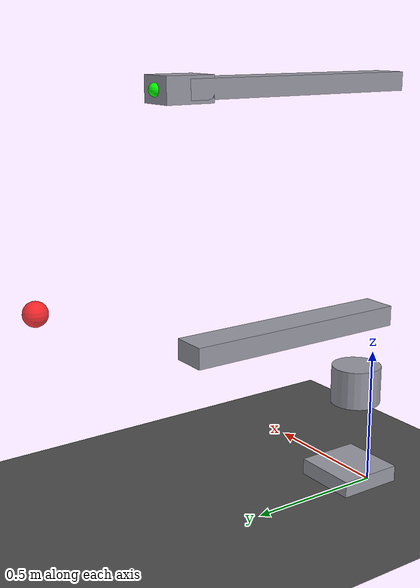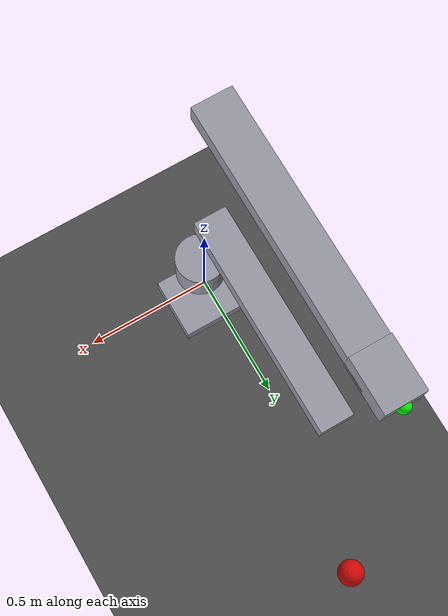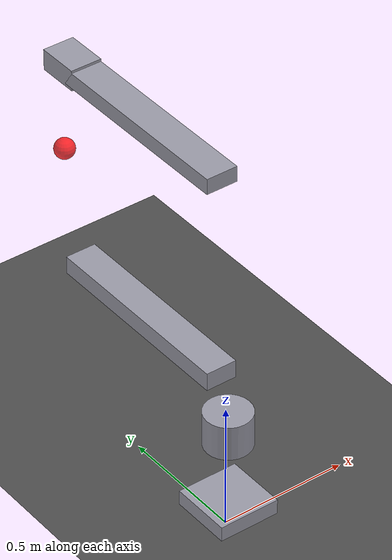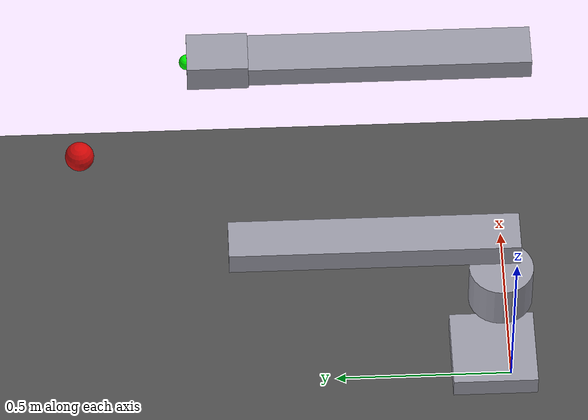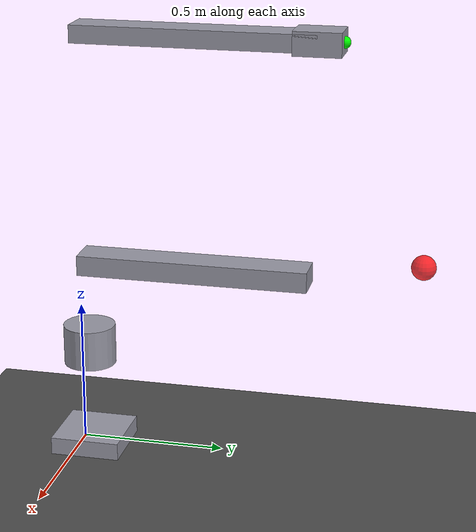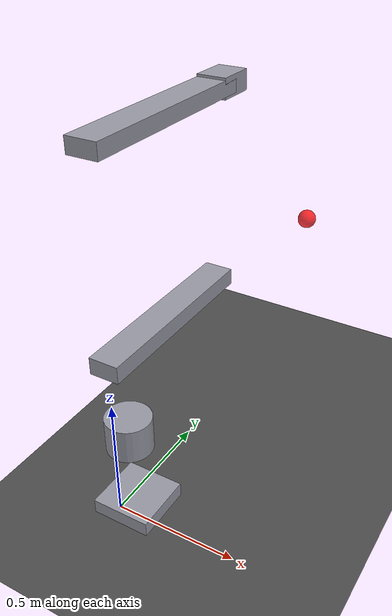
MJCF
<mujoco model="arduinobot_reach">

    <!-- ============================================================
         COMPILER AND SIMULATION SETTINGS
         ============================================================ -->

    <compiler angle="radian"
              coordinate="local"
              inertiafromgeom="false"/>

    <option timestep="0.002"
            gravity="0 0 -9.81"
            integrator="RK4"/>

    <!-- ============================================================
         DEFAULT SETTINGS
         ============================================================ -->

    <default>

        <!-- Visual geometry -->
        <geom contype="1"
              conaffinity="1"
              friction="0.8 0.1 0.1"/>

        <!-- Arm joints -->
        <joint damping="0.1"
               armature="0.01"
               limited="true"/>

        <!-- Position actuators -->
        <position kp="50"
                  forcelimited="true"
                  forcerange="-30 30"/>

    </default>

    <!-- ============================================================
         ASSETS
         ============================================================ -->

    <asset>

        <!-- Simple ground material -->
        <material name="ground_material"
                  rgba="0.3 0.3 0.3 1"/>

        <material name="robot_material"
                  rgba="0.6 0.6 0.65 1"/>

        <material name="target_material"
                  rgba="1 0 0 0.8"/>

    </asset>

    <!-- ============================================================
         WORLD
         ============================================================ -->

    <worldbody>

        <!-- Ground -->
        <geom name="ground"
              type="plane"
              size="5 5 0.1"
              material="ground_material"/>

        <!-- ========================================================
             BASE LINK
             ======================================================== -->

        <body name="base_link"
              pos="0 0 0">

            <inertial
                pos="0.047813751 0.050114205 0.011410979"
                mass="0.053288777"
                fullinertia="
                    3.37e-05
                    3.12e-05
                    5.65e-05
                    3.35e-09
                    -4.41e-10
                    9.25e-08"/>

            <!-- Temporary simplified base geometry -->
            <geom name="base_visual"
                  type="box"
                  size="0.12 0.12 0.03"
                  pos="0.05 0.05 0.03"
                  material="robot_material"/>

            <!-- ====================================================
                 JOINT 1 + BASE PLATE
                 ==================================================== -->

            <body name="base_plate"
                  pos="0 0 0.307">

                <joint name="joint_1"
                       type="hinge"
                       axis="0 0 1"
                       range="-1.570796 1.570796"/>

                <inertial
                    pos="0.037456830 0.039132251 0.068646169"
                    mass="0.054531064"
                    fullinertia="
                        2.30e-05
                        2.75e-05
                        3.20e-05
                        -2.08e-06
                        1.93e-06
                        -2.33e-06"/>

                <!-- Temporary simplified geometry -->
                <geom name="base_plate_visual"
                      type="cylinder"
                      size="0.09 0.07"
                      pos="0.04 0.04 0.07"
                      material="robot_material"/>

                <!-- ================================================
                     JOINT 2 + FORWARD DRIVE ARM
                     ================================================ -->

                <body name="forward_drive_arm"
                      pos="-0.02 0 0.35">

                    <joint name="joint_2"
                           type="hinge"
                           axis="1 0 0"
                           range="-1.570796 1.570796"/>

                    <inertial
                        pos="0.041356854 0.015301914 0.006504508"
                        mass="0.016329173"
                        fullinertia="
                            1.29e-06
                            1.17e-05
                            1.25e-05
                            -1.85e-07
                            -3.52e-07
                            5.31e-09"/>

                    <!-- Temporary link geometry -->
                    <geom name="forward_arm_visual"
                          type="box"
                          size="0.06 0.40 0.035"
                          pos="0 0.40 0"
                          material="robot_material"/>

                    <!-- ============================================
                         JOINT 3 + HORIZONTAL ARM
                         ============================================ -->

                    <body name="horizontal_arm"
                          pos="0 0 0.8">

                        <joint name="joint_3"
                               type="hinge"
                               axis="1 0 0"
                               range="-1.570796 1.570796"/>

                        <inertial
                            pos="0.059426010 0.007996574 0.004040000"
                            mass="0.010945250"
                            fullinertia="
                                2.38e-07
                                1.49e-05
                                1.50e-05
                                -1.58e-07
                                5.44e-14
                                -4.00e-14"/>

                        <!-- Temporary link geometry -->
                        <geom name="horizontal_arm_visual"
                              type="box"
                              size="0.06 0.41 0.03"
                              pos="0 0.41 0"
                              material="robot_material"/>

                        <!-- ========================================
                             FIXED CLAW SUPPORT / END EFFECTOR
                             ======================================== -->

                        <body name="claw_support"
                              pos="0 0.82 0">

                            <inertial
                                pos="0.019393395 0.011560624 0.010132371"
                                mass="0.008336755"
                                fullinertia="
                                    1.39e-06
                                    2.82e-06
                                    2.19e-06
                                    5.05e-08
                                    -4.60e-07
                                    -1.60e-07"/>

                            <!-- Temporary end-effector geometry -->
                            <geom name="claw_support_visual"
                                  type="box"
                                  size="0.06 0.08 0.04"
                                  material="robot_material"/>

                            <!-- RL end-effector tracking point -->
                            <site name="end_effector"
                                  pos="0 0.08 0"
                                  size="0.02"
                                  rgba="0 1 0 1"/>

                        </body>

                    </body>

                </body>

            </body>

        </body>

        <!-- ========================================================
             TARGET MARKER
             ======================================================== -->

        <body name="target"
              mocap="true"
              pos="0.20 1.20 0.80">

            <geom name="target_marker"
                  type="sphere"
                  size="0.04"
                  material="target_material"
                  contype="0"
                  conaffinity="0"/>

        </body>

    </worldbody>

    <!-- ============================================================
         ACTUATORS
         ============================================================ -->

    <actuator>

        <position name="joint_1_actuator"
                  joint="joint_1"
                  ctrlrange="-1.570796 1.570796"
                  kp="50"/>

        <position name="joint_2_actuator"
                  joint="joint_2"
                  ctrlrange="-1.570796 1.570796"
                  kp="50"/>

        <position name="joint_3_actuator"
                  joint="joint_3"
                  ctrlrange="-1.570796 1.570796"
                  kp="50"/>

    </actuator>

    <!-- ============================================================
         SENSORS
         ============================================================ -->

    <sensor>

        <jointpos name="joint_1_position"
                  joint="joint_1"/>

        <jointpos name="joint_2_position"
                  joint="joint_2"/>

        <jointpos name="joint_3_position"
                  joint="joint_3"/>

        <jointvel name="joint_1_velocity"
                  joint="joint_1"/>

        <jointvel name="joint_2_velocity"
                  joint="joint_2"/>

        <jointvel name="joint_3_velocity"
                  joint="joint_3"/>

        <framepos name="end_effector_position"
                  objtype="site"
                  objname="end_effector"/>

    </sensor>

</mujoco>
